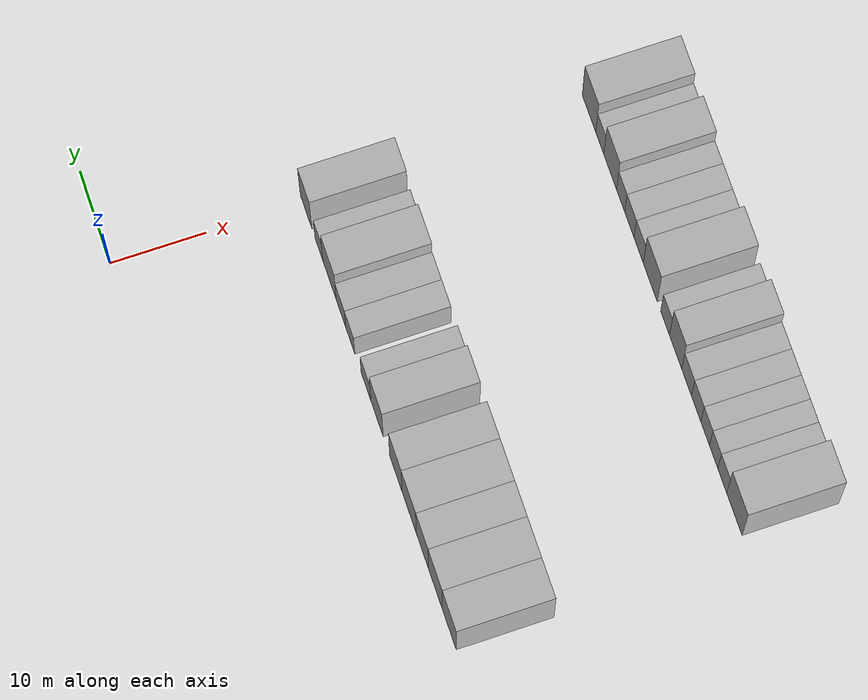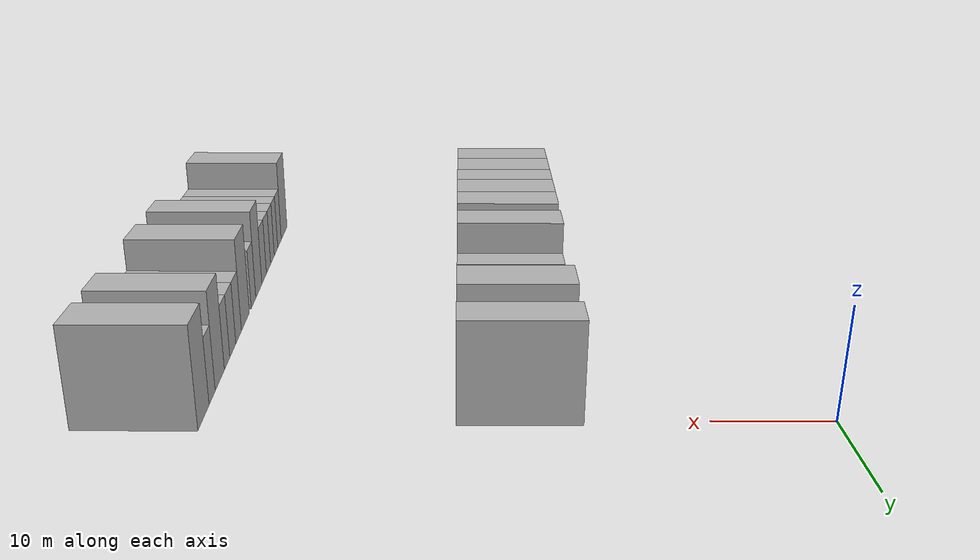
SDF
<sdf version="1.6">
 <world name="default">
  <model name="building_36">
   <static>1</static>
   <pose>25.0000 -45.6863 0 0.000000 0.000000 0.000000</pose>
   <link name="link">
    <pose>0 0 4.50 0 0 0</pose>
    <collision name="collision"><geometry><box><size>10.0000 4.2008 9.0000</size></box></geometry></collision>
    <visual name="visual">
     <cast_shadows>0</cast_shadows>
     <geometry><box><size>10.0000 4.2008 9.0000</size></box></geometry>
     <material>
      <script>
       <uri>model://HANNAS_wall/materials/scripts</uri>
       <uri>model://HANNAS_wall/materials/textures</uri>
       <name>vrc/HANNAS_wall</name>
      </script>
     </material>
    </visual>
   </link>
  </model>
  <model name="building_37">
   <static>1</static>
   <pose>25.0000 -41.4699 0 0.000000 0.000000 0.000000</pose>
   <link name="link">
    <pose>0 0 4.50 0 0 0</pose>
    <collision name="collision"><geometry><box><size>10.0000 4.2320 9.0000</size></box></geometry></collision>
    <visual name="visual">
     <cast_shadows>0</cast_shadows>
     <geometry><box><size>10.0000 4.2320 9.0000</size></box></geometry>
     <material>
      <script>
       <uri>model://HANNAS_wall/materials/scripts</uri>
       <uri>model://HANNAS_wall/materials/textures</uri>
       <name>vrc/HANNAS_wall</name>
      </script>
     </material>
    </visual>
   </link>
  </model>
  <model name="building_38">
   <static>1</static>
   <pose>25.0000 -37.5011 0 0.000000 0.000000 0.000000</pose>
   <link name="link">
    <pose>0 0 4.50 0 0 0</pose>
    <collision name="collision"><geometry><box><size>10.0000 3.7056 9.0000</size></box></geometry></collision>
    <visual name="visual">
     <cast_shadows>0</cast_shadows>
     <geometry><box><size>10.0000 3.7056 9.0000</size></box></geometry>
     <material>
      <script>
       <uri>model://HANNAS_wall/materials/scripts</uri>
       <uri>model://HANNAS_wall/materials/textures</uri>
       <name>vrc/HANNAS_wall</name>
      </script>
     </material>
    </visual>
   </link>
  </model>
  <model name="building_39">
   <static>1</static>
   <pose>25.0000 -33.4567 0 0.000000 0.000000 0.000000</pose>
   <link name="link">
    <pose>0 0 4.50 0 0 0</pose>
    <collision name="collision"><geometry><box><size>10.0000 4.3831 9.0000</size></box></geometry></collision>
    <visual name="visual">
     <cast_shadows>0</cast_shadows>
     <geometry><box><size>10.0000 4.3831 9.0000</size></box></geometry>
     <material>
      <script>
       <uri>model://HANNAS_wall/materials/scripts</uri>
       <uri>model://HANNAS_wall/materials/textures</uri>
       <name>vrc/HANNAS_wall</name>
      </script>
     </material>
    </visual>
   </link>
  </model>
  <model name="building_40">
   <static>1</static>
   <pose>25.0000 -29.3415 0 0.000000 0.000000 0.000000</pose>
   <link name="link">
    <pose>0 0 4.50 0 0 0</pose>
    <collision name="collision"><geometry><box><size>10.0000 3.8474 9.0000</size></box></geometry></collision>
    <visual name="visual">
     <cast_shadows>0</cast_shadows>
     <geometry><box><size>10.0000 3.8474 9.0000</size></box></geometry>
     <material>
      <script>
       <uri>model://HANNAS_wall/materials/scripts</uri>
       <uri>model://HANNAS_wall/materials/textures</uri>
       <name>vrc/HANNAS_wall</name>
      </script>
     </material>
    </visual>
   </link>
  </model>
  <model name="building_41">
   <static>1</static>
   <pose>25.0000 -23.4718 0 0.000000 0.000000 0.000000</pose>
   <link name="link">
    <pose>0 0 4.50 0 0 0</pose>
    <collision name="collision"><geometry><box><size>10.0000 3.8921 9.0000</size></box></geometry></collision>
    <visual name="visual">
     <cast_shadows>0</cast_shadows>
     <geometry><box><size>10.0000 3.8921 9.0000</size></box></geometry>
     <material>
      <script>
       <uri>model://HANNAS_wall/materials/scripts</uri>
       <uri>model://HANNAS_wall/materials/textures</uri>
       <name>vrc/HANNAS_wall</name>
      </script>
     </material>
    </visual>
   </link>
  </model>
  <model name="building_42">
   <static>1</static>
   <pose>25.0000 -20.0502 0 0.000000 0.000000 0.000000</pose>
   <link name="link">
    <pose>0 0 3.00 0 0 0</pose>
    <collision name="collision"><geometry><box><size>10.0000 2.9510 6.0000</size></box></geometry></collision>
    <visual name="visual">
     <cast_shadows>0</cast_shadows>
     <geometry><box><size>10.0000 2.9510 6.0000</size></box></geometry>
     <material>
      <script>
       <uri>model://HANNAS_wall/materials/scripts</uri>
       <uri>model://HANNAS_wall/materials/textures</uri>
       <name>vrc/HANNAS_wall</name>
      </script>
     </material>
    </visual>
   </link>
  </model>
  <model name="building_43">
   <static>1</static>
   <pose>25.0000 -15.1370 0 0.000000 0.000000 0.000000</pose>
   <link name="link">
    <pose>0 0 3.00 0 0 0</pose>
    <collision name="collision"><geometry><box><size>10.0000 2.8754 6.0000</size></box></geometry></collision>
    <visual name="visual">
     <cast_shadows>0</cast_shadows>
     <geometry><box><size>10.0000 2.8754 6.0000</size></box></geometry>
     <material>
      <script>
       <uri>model://HANNAS_wall/materials/scripts</uri>
       <uri>model://HANNAS_wall/materials/textures</uri>
       <name>vrc/HANNAS_wall</name>
      </script>
     </material>
    </visual>
   </link>
  </model>
  <model name="building_44">
   <static>1</static>
   <pose>25.0000 -12.2270 0 0.000000 0.000000 0.000000</pose>
   <link name="link">
    <pose>0 0 3.00 0 0 0</pose>
    <collision name="collision"><geometry><box><size>10.0000 2.9447 6.0000</size></box></geometry></collision>
    <visual name="visual">
     <cast_shadows>0</cast_shadows>
     <geometry><box><size>10.0000 2.9447 6.0000</size></box></geometry>
     <material>
      <script>
       <uri>model://HANNAS_wall/materials/scripts</uri>
       <uri>model://HANNAS_wall/materials/textures</uri>
       <name>vrc/HANNAS_wall</name>
      </script>
     </material>
    </visual>
   </link>
  </model>
  <model name="building_45">
   <static>1</static>
   <pose>25.0000 -8.6451 0 0.000000 0.000000 0.000000</pose>
   <link name="link">
    <pose>0 0 4.50 0 0 0</pose>
    <collision name="collision"><geometry><box><size>10.0000 4.2191 9.0000</size></box></geometry></collision>
    <visual name="visual">
     <cast_shadows>0</cast_shadows>
     <geometry><box><size>10.0000 4.2191 9.0000</size></box></geometry>
     <material>
      <script>
       <uri>model://HANNAS_wall/materials/scripts</uri>
       <uri>model://HANNAS_wall/materials/textures</uri>
       <name>vrc/HANNAS_wall</name>
      </script>
     </material>
    </visual>
   </link>
  </model>
  <model name="building_46">
   <static>1</static>
   <pose>25.0000 -5.2755 0 0.000000 0.000000 0.000000</pose>
   <link name="link">
    <pose>0 0 3.00 0 0 0</pose>
    <collision name="collision"><geometry><box><size>10.0000 2.5201 6.0000</size></box></geometry></collision>
    <visual name="visual">
     <cast_shadows>0</cast_shadows>
     <geometry><box><size>10.0000 2.5201 6.0000</size></box></geometry>
     <material>
      <script>
       <uri>model://HANNAS_wall/materials/scripts</uri>
       <uri>model://HANNAS_wall/materials/textures</uri>
       <name>vrc/HANNAS_wall</name>
      </script>
     </material>
    </visual>
   </link>
  </model>
  <model name="building_47">
   <static>1</static>
   <pose>25.0000 -1.1833 0 0.000000 0.000000 0.000000</pose>
   <link name="link">
    <pose>0 0 4.50 0 0 0</pose>
    <collision name="collision"><geometry><box><size>10.0000 3.6642 9.0000</size></box></geometry></collision>
    <visual name="visual">
     <cast_shadows>0</cast_shadows>
     <geometry><box><size>10.0000 3.6642 9.0000</size></box></geometry>
     <material>
      <script>
       <uri>model://HANNAS_wall/materials/scripts</uri>
       <uri>model://HANNAS_wall/materials/textures</uri>
       <name>vrc/HANNAS_wall</name>
      </script>
     </material>
    </visual>
   </link>
  </model>
  <model name="building_150">
   <static>1</static>
   <pose>55.0000 -43.7653 0 0.000000 0.000000 0.000000</pose>
   <link name="link">
    <pose>0 0 4.50 0 0 0</pose>
    <collision name="collision"><geometry><box><size>10.0000 4.4448 9.0000</size></box></geometry></collision>
    <visual name="visual">
     <cast_shadows>0</cast_shadows>
     <geometry><box><size>10.0000 4.4448 9.0000</size></box></geometry>
     <material>
      <script>
       <uri>model://HANNAS_wall/materials/scripts</uri>
       <uri>model://HANNAS_wall/materials/textures</uri>
       <name>vrc/HANNAS_wall</name>
      </script>
     </material>
    </visual>
   </link>
  </model>
  <model name="building_151">
   <static>1</static>
   <pose>55.0000 -40.2299 0 0.000000 0.000000 0.000000</pose>
   <link name="link">
    <pose>0 0 3.00 0 0 0</pose>
    <collision name="collision"><geometry><box><size>10.0000 2.6259 6.0000</size></box></geometry></collision>
    <visual name="visual">
     <cast_shadows>0</cast_shadows>
     <geometry><box><size>10.0000 2.6259 6.0000</size></box></geometry>
     <material>
      <script>
       <uri>model://HANNAS_wall/materials/scripts</uri>
       <uri>model://HANNAS_wall/materials/textures</uri>
       <name>vrc/HANNAS_wall</name>
      </script>
     </material>
    </visual>
   </link>
  </model>
  <model name="building_152">
   <static>1</static>
   <pose>55.0000 -37.7007 0 0.000000 0.000000 0.000000</pose>
   <link name="link">
    <pose>0 0 3.00 0 0 0</pose>
    <collision name="collision"><geometry><box><size>10.0000 2.4325 6.0000</size></box></geometry></collision>
    <visual name="visual">
     <cast_shadows>0</cast_shadows>
     <geometry><box><size>10.0000 2.4325 6.0000</size></box></geometry>
     <material>
      <script>
       <uri>model://HANNAS_wall/materials/scripts</uri>
       <uri>model://HANNAS_wall/materials/textures</uri>
       <name>vrc/HANNAS_wall</name>
      </script>
     </material>
    </visual>
   </link>
  </model>
  <model name="building_153">
   <static>1</static>
   <pose>55.0000 -35.2182 0 0.000000 0.000000 0.000000</pose>
   <link name="link">
    <pose>0 0 3.00 0 0 0</pose>
    <collision name="collision"><geometry><box><size>10.0000 2.5325 6.0000</size></box></geometry></collision>
    <visual name="visual">
     <cast_shadows>0</cast_shadows>
     <geometry><box><size>10.0000 2.5325 6.0000</size></box></geometry>
     <material>
      <script>
       <uri>model://HANNAS_wall/materials/scripts</uri>
       <uri>model://HANNAS_wall/materials/textures</uri>
       <name>vrc/HANNAS_wall</name>
      </script>
     </material>
    </visual>
   </link>
  </model>
  <model name="building_154">
   <static>1</static>
   <pose>55.0000 -32.5647 0 0.000000 0.000000 0.000000</pose>
   <link name="link">
    <pose>0 0 3.00 0 0 0</pose>
    <collision name="collision"><geometry><box><size>10.0000 2.7745 6.0000</size></box></geometry></collision>
    <visual name="visual">
     <cast_shadows>0</cast_shadows>
     <geometry><box><size>10.0000 2.7745 6.0000</size></box></geometry>
     <material>
      <script>
       <uri>model://HANNAS_wall/materials/scripts</uri>
       <uri>model://HANNAS_wall/materials/textures</uri>
       <name>vrc/HANNAS_wall</name>
      </script>
     </material>
    </visual>
   </link>
  </model>
  <model name="building_155">
   <static>1</static>
   <pose>55.0000 -29.7502 0 0.000000 0.000000 0.000000</pose>
   <link name="link">
    <pose>0 0 3.00 0 0 0</pose>
    <collision name="collision"><geometry><box><size>10.0000 2.8545 6.0000</size></box></geometry></collision>
    <visual name="visual">
     <cast_shadows>0</cast_shadows>
     <geometry><box><size>10.0000 2.8545 6.0000</size></box></geometry>
     <material>
      <script>
       <uri>model://HANNAS_wall/materials/scripts</uri>
       <uri>model://HANNAS_wall/materials/textures</uri>
       <name>vrc/HANNAS_wall</name>
      </script>
     </material>
    </visual>
   </link>
  </model>
  <model name="building_156">
   <static>1</static>
   <pose>55.0000 -26.5014 0 0.000000 0.000000 0.000000</pose>
   <link name="link">
    <pose>0 0 4.50 0 0 0</pose>
    <collision name="collision"><geometry><box><size>10.0000 3.6430 9.0000</size></box></geometry></collision>
    <visual name="visual">
     <cast_shadows>0</cast_shadows>
     <geometry><box><size>10.0000 3.6430 9.0000</size></box></geometry>
     <material>
      <script>
       <uri>model://HANNAS_wall/materials/scripts</uri>
       <uri>model://HANNAS_wall/materials/textures</uri>
       <name>vrc/HANNAS_wall</name>
      </script>
     </material>
    </visual>
   </link>
  </model>
  <model name="building_157">
   <static>1</static>
   <pose>55.0000 -23.3731 0 0.000000 0.000000 0.000000</pose>
   <link name="link">
    <pose>0 0 3.00 0 0 0</pose>
    <collision name="collision"><geometry><box><size>10.0000 2.6136 6.0000</size></box></geometry></collision>
    <visual name="visual">
     <cast_shadows>0</cast_shadows>
     <geometry><box><size>10.0000 2.6136 6.0000</size></box></geometry>
     <material>
      <script>
       <uri>model://HANNAS_wall/materials/scripts</uri>
       <uri>model://HANNAS_wall/materials/textures</uri>
       <name>vrc/HANNAS_wall</name>
      </script>
     </material>
    </visual>
   </link>
  </model>
  <model name="building_158">
   <static>1</static>
   <pose>55.0000 -18.9725 0 0.000000 0.000000 0.000000</pose>
   <link name="link">
    <pose>0 0 4.50 0 0 0</pose>
    <collision name="collision"><geometry><box><size>10.0000 4.1876 9.0000</size></box></geometry></collision>
    <visual name="visual">
     <cast_shadows>0</cast_shadows>
     <geometry><box><size>10.0000 4.1876 9.0000</size></box></geometry>
     <material>
      <script>
       <uri>model://HANNAS_wall/materials/scripts</uri>
       <uri>model://HANNAS_wall/materials/textures</uri>
       <name>vrc/HANNAS_wall</name>
      </script>
     </material>
    </visual>
   </link>
  </model>
  <model name="building_159">
   <static>1</static>
   <pose>55.0000 -15.4908 0 0.000000 0.000000 0.000000</pose>
   <link name="link">
    <pose>0 0 3.00 0 0 0</pose>
    <collision name="collision"><geometry><box><size>10.0000 2.7760 6.0000</size></box></geometry></collision>
    <visual name="visual">
     <cast_shadows>0</cast_shadows>
     <geometry><box><size>10.0000 2.7760 6.0000</size></box></geometry>
     <material>
      <script>
       <uri>model://HANNAS_wall/materials/scripts</uri>
       <uri>model://HANNAS_wall/materials/textures</uri>
       <name>vrc/HANNAS_wall</name>
      </script>
     </material>
    </visual>
   </link>
  </model>
  <model name="building_160">
   <static>1</static>
   <pose>55.0000 -12.6981 0 0.000000 0.000000 0.000000</pose>
   <link name="link">
    <pose>0 0 3.00 0 0 0</pose>
    <collision name="collision"><geometry><box><size>10.0000 2.8094 6.0000</size></box></geometry></collision>
    <visual name="visual">
     <cast_shadows>0</cast_shadows>
     <geometry><box><size>10.0000 2.8094 6.0000</size></box></geometry>
     <material>
      <script>
       <uri>model://HANNAS_wall/materials/scripts</uri>
       <uri>model://HANNAS_wall/materials/textures</uri>
       <name>vrc/HANNAS_wall</name>
      </script>
     </material>
    </visual>
   </link>
  </model>
  <model name="building_161">
   <static>1</static>
   <pose>55.0000 -10.0756 0 0.000000 0.000000 0.000000</pose>
   <link name="link">
    <pose>0 0 3.00 0 0 0</pose>
    <collision name="collision"><geometry><box><size>10.0000 2.4357 6.0000</size></box></geometry></collision>
    <visual name="visual">
     <cast_shadows>0</cast_shadows>
     <geometry><box><size>10.0000 2.4357 6.0000</size></box></geometry>
     <material>
      <script>
       <uri>model://HANNAS_wall/materials/scripts</uri>
       <uri>model://HANNAS_wall/materials/textures</uri>
       <name>vrc/HANNAS_wall</name>
      </script>
     </material>
    </visual>
   </link>
  </model>
  <model name="building_162">
   <static>1</static>
   <pose>55.0000 -6.9256 0 0.000000 0.000000 0.000000</pose>
   <link name="link">
    <pose>0 0 4.50 0 0 0</pose>
    <collision name="collision"><geometry><box><size>10.0000 3.8642 9.0000</size></box></geometry></collision>
    <visual name="visual">
     <cast_shadows>0</cast_shadows>
     <geometry><box><size>10.0000 3.8642 9.0000</size></box></geometry>
     <material>
      <script>
       <uri>model://HANNAS_wall/materials/scripts</uri>
       <uri>model://HANNAS_wall/materials/textures</uri>
       <name>vrc/HANNAS_wall</name>
      </script>
     </material>
    </visual>
   </link>
  </model>
  <model name="building_163">
   <static>1</static>
   <pose>55.0000 -3.7816 0 0.000000 0.000000 0.000000</pose>
   <link name="link">
    <pose>0 0 3.00 0 0 0</pose>
    <collision name="collision"><geometry><box><size>10.0000 2.4238 6.0000</size></box></geometry></collision>
    <visual name="visual">
     <cast_shadows>0</cast_shadows>
     <geometry><box><size>10.0000 2.4238 6.0000</size></box></geometry>
     <material>
      <script>
       <uri>model://HANNAS_wall/materials/scripts</uri>
       <uri>model://HANNAS_wall/materials/textures</uri>
       <name>vrc/HANNAS_wall</name>
      </script>
     </material>
    </visual>
   </link>
  </model>
  <model name="building_164">
   <static>1</static>
   <pose>55.0000 -0.4888 0 0.000000 0.000000 0.000000</pose>
   <link name="link">
    <pose>0 0 4.50 0 0 0</pose>
    <collision name="collision"><geometry><box><size>10.0000 4.1617 9.0000</size></box></geometry></collision>
    <visual name="visual">
     <cast_shadows>0</cast_shadows>
     <geometry><box><size>10.0000 4.1617 9.0000</size></box></geometry>
     <material>
      <script>
       <uri>model://HANNAS_wall/materials/scripts</uri>
       <uri>model://HANNAS_wall/materials/textures</uri>
       <name>vrc/HANNAS_wall</name>
      </script>
     </material>
    </visual>
   </link>
  </model>
 </world>
</sdf>
